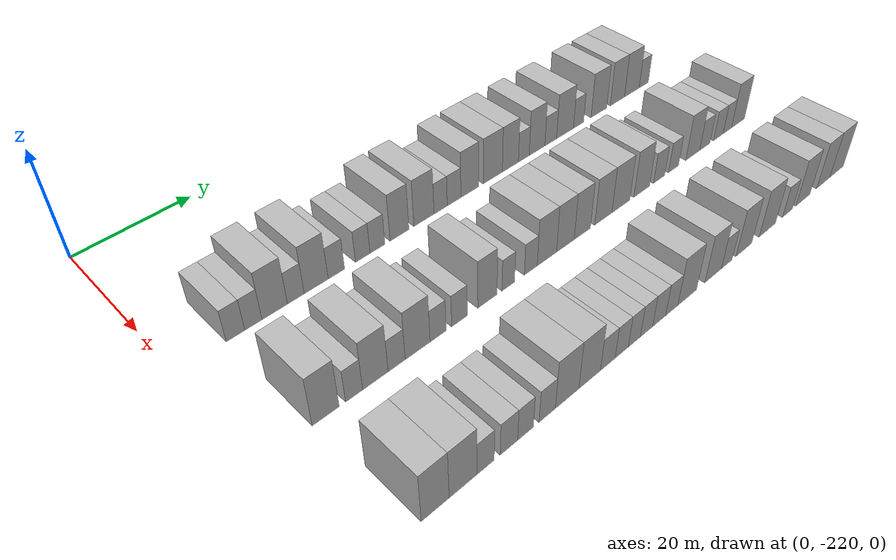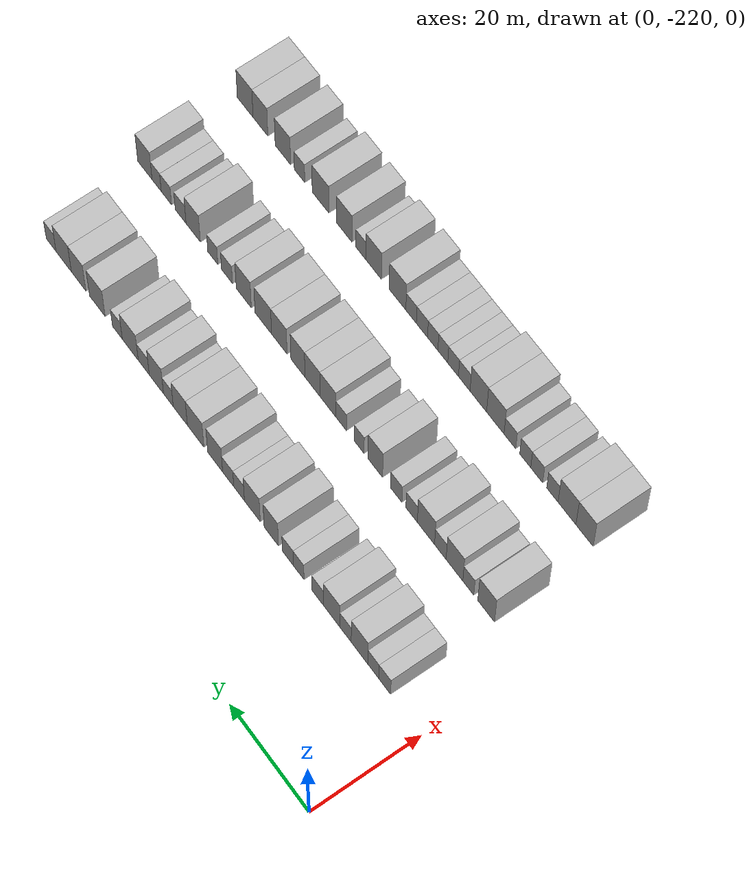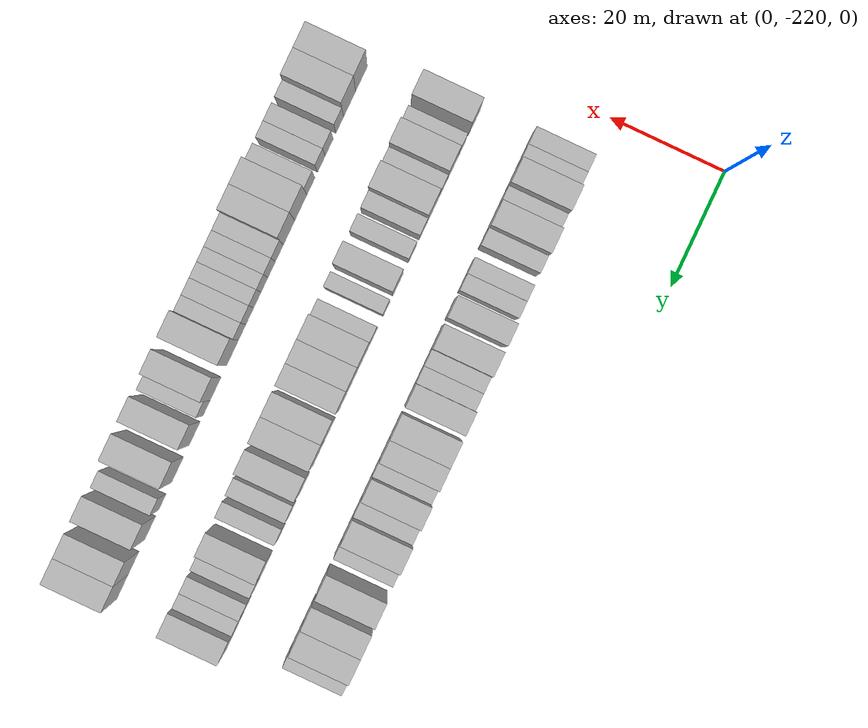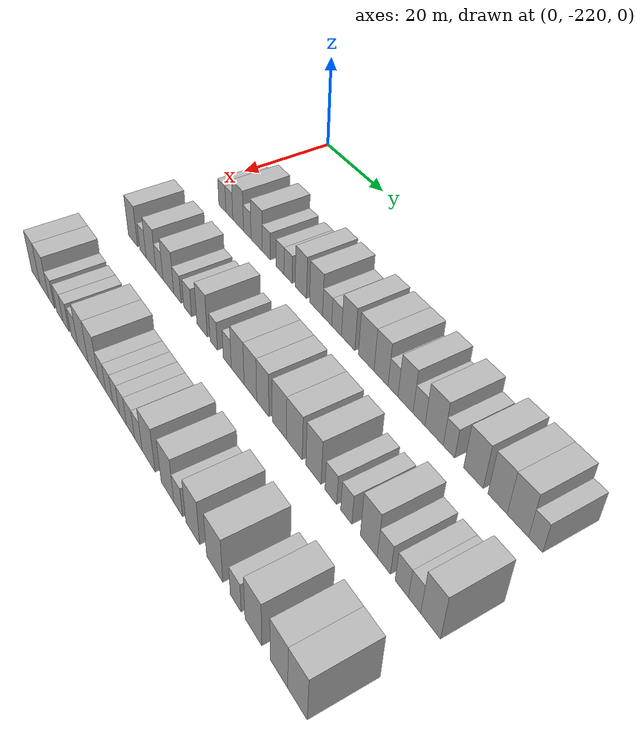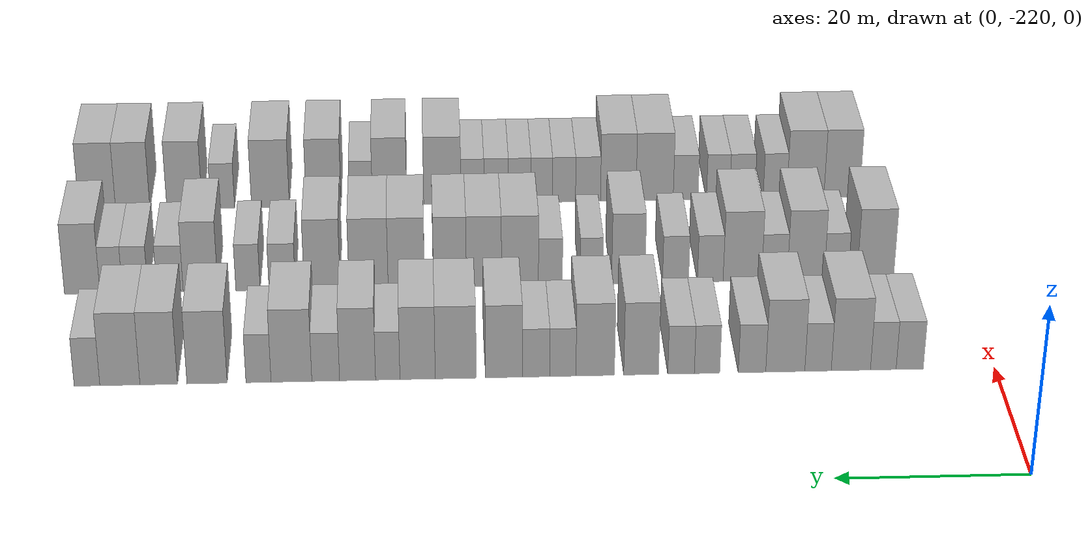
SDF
<sdf version="1.6">
 <world name="default">
  <model name="building_32">
   <static>1</static>
   <pose>25.0000 -210.8348 0 0.000000 0.000000 0.000000</pose>
   <link name="link">
    <pose>0 0 3.00 0 0 0</pose>
    <collision name="collision"><geometry><box><size>10.0000 2.9253 6.0000</size></box></geometry></collision>
    <visual name="visual">
     <cast_shadows>0</cast_shadows>
     <geometry><box><size>10.0000 2.9253 6.0000</size></box></geometry>
     <material>
      <script>
       <uri>model://HANNAS_wall/materials/scripts</uri>
       <uri>model://HANNAS_wall/materials/textures</uri>
       <name>vrc/HANNAS_wall</name>
      </script>
     </material>
    </visual>
   </link>
  </model>
  <model name="building_33">
   <static>1</static>
   <pose>25.0000 -207.9864 0 0.000000 0.000000 0.000000</pose>
   <link name="link">
    <pose>0 0 3.00 0 0 0</pose>
    <collision name="collision"><geometry><box><size>10.0000 2.7715 6.0000</size></box></geometry></collision>
    <visual name="visual">
     <cast_shadows>0</cast_shadows>
     <geometry><box><size>10.0000 2.7715 6.0000</size></box></geometry>
     <material>
      <script>
       <uri>model://HANNAS_wall/materials/scripts</uri>
       <uri>model://HANNAS_wall/materials/textures</uri>
       <name>vrc/HANNAS_wall</name>
      </script>
     </material>
    </visual>
   </link>
  </model>
  <model name="building_34">
   <static>1</static>
   <pose>25.0000 -204.4885 0 0.000000 0.000000 0.000000</pose>
   <link name="link">
    <pose>0 0 4.50 0 0 0</pose>
    <collision name="collision"><geometry><box><size>10.0000 4.2243 9.0000</size></box></geometry></collision>
    <visual name="visual">
     <cast_shadows>0</cast_shadows>
     <geometry><box><size>10.0000 4.2243 9.0000</size></box></geometry>
     <material>
      <script>
       <uri>model://HANNAS_wall/materials/scripts</uri>
       <uri>model://HANNAS_wall/materials/textures</uri>
       <name>vrc/HANNAS_wall</name>
      </script>
     </material>
    </visual>
   </link>
  </model>
  <model name="building_35">
   <static>1</static>
   <pose>25.0000 -200.9533 0 0.000000 0.000000 0.000000</pose>
   <link name="link">
    <pose>0 0 3.00 0 0 0</pose>
    <collision name="collision"><geometry><box><size>10.0000 2.8462 6.0000</size></box></geometry></collision>
    <visual name="visual">
     <cast_shadows>0</cast_shadows>
     <geometry><box><size>10.0000 2.8462 6.0000</size></box></geometry>
     <material>
      <script>
       <uri>model://HANNAS_wall/materials/scripts</uri>
       <uri>model://HANNAS_wall/materials/textures</uri>
       <name>vrc/HANNAS_wall</name>
      </script>
     </material>
    </visual>
   </link>
  </model>
  <model name="building_36">
   <static>1</static>
   <pose>25.0000 -197.4274 0 0.000000 0.000000 0.000000</pose>
   <link name="link">
    <pose>0 0 4.50 0 0 0</pose>
    <collision name="collision"><geometry><box><size>10.0000 4.2056 9.0000</size></box></geometry></collision>
    <visual name="visual">
     <cast_shadows>0</cast_shadows>
     <geometry><box><size>10.0000 4.2056 9.0000</size></box></geometry>
     <material>
      <script>
       <uri>model://HANNAS_wall/materials/scripts</uri>
       <uri>model://HANNAS_wall/materials/textures</uri>
       <name>vrc/HANNAS_wall</name>
      </script>
     </material>
    </visual>
   </link>
  </model>
  <model name="building_37">
   <static>1</static>
   <pose>25.0000 -193.8503 0 0.000000 0.000000 0.000000</pose>
   <link name="link">
    <pose>0 0 3.00 0 0 0</pose>
    <collision name="collision"><geometry><box><size>10.0000 2.9484 6.0000</size></box></geometry></collision>
    <visual name="visual">
     <cast_shadows>0</cast_shadows>
     <geometry><box><size>10.0000 2.9484 6.0000</size></box></geometry>
     <material>
      <script>
       <uri>model://HANNAS_wall/materials/scripts</uri>
       <uri>model://HANNAS_wall/materials/textures</uri>
       <name>vrc/HANNAS_wall</name>
      </script>
     </material>
    </visual>
   </link>
  </model>
  <model name="building_38">
   <static>1</static>
   <pose>25.0000 -189.0111 0 0.000000 0.000000 0.000000</pose>
   <link name="link">
    <pose>0 0 3.00 0 0 0</pose>
    <collision name="collision"><geometry><box><size>10.0000 2.7301 6.0000</size></box></geometry></collision>
    <visual name="visual">
     <cast_shadows>0</cast_shadows>
     <geometry><box><size>10.0000 2.7301 6.0000</size></box></geometry>
     <material>
      <script>
       <uri>model://HANNAS_wall/materials/scripts</uri>
       <uri>model://HANNAS_wall/materials/textures</uri>
       <name>vrc/HANNAS_wall</name>
      </script>
     </material>
    </visual>
   </link>
  </model>
  <model name="building_39">
   <static>1</static>
   <pose>25.0000 -186.2230 0 0.000000 0.000000 0.000000</pose>
   <link name="link">
    <pose>0 0 3.00 0 0 0</pose>
    <collision name="collision"><geometry><box><size>10.0000 2.8460 6.0000</size></box></geometry></collision>
    <visual name="visual">
     <cast_shadows>0</cast_shadows>
     <geometry><box><size>10.0000 2.8460 6.0000</size></box></geometry>
     <material>
      <script>
       <uri>model://HANNAS_wall/materials/scripts</uri>
       <uri>model://HANNAS_wall/materials/textures</uri>
       <name>vrc/HANNAS_wall</name>
      </script>
     </material>
    </visual>
   </link>
  </model>
  <model name="building_40">
   <static>1</static>
   <pose>25.0000 -181.9369 0 0.000000 0.000000 0.000000</pose>
   <link name="link">
    <pose>0 0 4.50 0 0 0</pose>
    <collision name="collision"><geometry><box><size>10.0000 3.7263 9.0000</size></box></geometry></collision>
    <visual name="visual">
     <cast_shadows>0</cast_shadows>
     <geometry><box><size>10.0000 3.7263 9.0000</size></box></geometry>
     <material>
      <script>
       <uri>model://HANNAS_wall/materials/scripts</uri>
       <uri>model://HANNAS_wall/materials/textures</uri>
       <name>vrc/HANNAS_wall</name>
      </script>
     </material>
    </visual>
   </link>
  </model>
  <model name="building_41">
   <static>1</static>
   <pose>25.0000 -177.0103 0 0.000000 0.000000 0.000000</pose>
   <link name="link">
    <pose>0 0 4.50 0 0 0</pose>
    <collision name="collision"><geometry><box><size>10.0000 4.1269 9.0000</size></box></geometry></collision>
    <visual name="visual">
     <cast_shadows>0</cast_shadows>
     <geometry><box><size>10.0000 4.1269 9.0000</size></box></geometry>
     <material>
      <script>
       <uri>model://HANNAS_wall/materials/scripts</uri>
       <uri>model://HANNAS_wall/materials/textures</uri>
       <name>vrc/HANNAS_wall</name>
      </script>
     </material>
    </visual>
   </link>
  </model>
  <model name="building_42">
   <static>1</static>
   <pose>25.0000 -173.5487 0 0.000000 0.000000 0.000000</pose>
   <link name="link">
    <pose>0 0 3.00 0 0 0</pose>
    <collision name="collision"><geometry><box><size>10.0000 2.7963 6.0000</size></box></geometry></collision>
    <visual name="visual">
     <cast_shadows>0</cast_shadows>
     <geometry><box><size>10.0000 2.7963 6.0000</size></box></geometry>
     <material>
      <script>
       <uri>model://HANNAS_wall/materials/scripts</uri>
       <uri>model://HANNAS_wall/materials/textures</uri>
       <name>vrc/HANNAS_wall</name>
      </script>
     </material>
    </visual>
   </link>
  </model>
  <model name="building_43">
   <static>1</static>
   <pose>25.0000 -170.6842 0 0.000000 0.000000 0.000000</pose>
   <link name="link">
    <pose>0 0 3.00 0 0 0</pose>
    <collision name="collision"><geometry><box><size>10.0000 2.9326 6.0000</size></box></geometry></collision>
    <visual name="visual">
     <cast_shadows>0</cast_shadows>
     <geometry><box><size>10.0000 2.9326 6.0000</size></box></geometry>
     <material>
      <script>
       <uri>model://HANNAS_wall/materials/scripts</uri>
       <uri>model://HANNAS_wall/materials/textures</uri>
       <name>vrc/HANNAS_wall</name>
      </script>
     </material>
    </visual>
   </link>
  </model>
  <model name="building_44">
   <static>1</static>
   <pose>25.0000 -167.2546 0 0.000000 0.000000 0.000000</pose>
   <link name="link">
    <pose>0 0 4.50 0 0 0</pose>
    <collision name="collision"><geometry><box><size>10.0000 3.9267 9.0000</size></box></geometry></collision>
    <visual name="visual">
     <cast_shadows>0</cast_shadows>
     <geometry><box><size>10.0000 3.9267 9.0000</size></box></geometry>
     <material>
      <script>
       <uri>model://HANNAS_wall/materials/scripts</uri>
       <uri>model://HANNAS_wall/materials/textures</uri>
       <name>vrc/HANNAS_wall</name>
      </script>
     </material>
    </visual>
   </link>
  </model>
  <model name="building_45">
   <static>1</static>
   <pose>25.0000 -162.1022 0 0.000000 0.000000 0.000000</pose>
   <link name="link">
    <pose>0 0 4.50 0 0 0</pose>
    <collision name="collision"><geometry><box><size>10.0000 4.3781 9.0000</size></box></geometry></collision>
    <visual name="visual">
     <cast_shadows>0</cast_shadows>
     <geometry><box><size>10.0000 4.3781 9.0000</size></box></geometry>
     <material>
      <script>
       <uri>model://HANNAS_wall/materials/scripts</uri>
       <uri>model://HANNAS_wall/materials/textures</uri>
       <name>vrc/HANNAS_wall</name>
      </script>
     </material>
    </visual>
   </link>
  </model>
  <model name="building_46">
   <static>1</static>
   <pose>25.0000 -158.0281 0 0.000000 0.000000 0.000000</pose>
   <link name="link">
    <pose>0 0 4.50 0 0 0</pose>
    <collision name="collision"><geometry><box><size>10.0000 3.7700 9.0000</size></box></geometry></collision>
    <visual name="visual">
     <cast_shadows>0</cast_shadows>
     <geometry><box><size>10.0000 3.7700 9.0000</size></box></geometry>
     <material>
      <script>
       <uri>model://HANNAS_wall/materials/scripts</uri>
       <uri>model://HANNAS_wall/materials/textures</uri>
       <name>vrc/HANNAS_wall</name>
      </script>
     </material>
    </visual>
   </link>
  </model>
  <model name="building_47">
   <static>1</static>
   <pose>25.0000 -154.8432 0 0.000000 0.000000 0.000000</pose>
   <link name="link">
    <pose>0 0 3.00 0 0 0</pose>
    <collision name="collision"><geometry><box><size>10.0000 2.5999 6.0000</size></box></geometry></collision>
    <visual name="visual">
     <cast_shadows>0</cast_shadows>
     <geometry><box><size>10.0000 2.5999 6.0000</size></box></geometry>
     <material>
      <script>
       <uri>model://HANNAS_wall/materials/scripts</uri>
       <uri>model://HANNAS_wall/materials/textures</uri>
       <name>vrc/HANNAS_wall</name>
      </script>
     </material>
    </visual>
   </link>
  </model>
  <model name="building_48">
   <static>1</static>
   <pose>25.0000 -151.6266 0 0.000000 0.000000 0.000000</pose>
   <link name="link">
    <pose>0 0 4.50 0 0 0</pose>
    <collision name="collision"><geometry><box><size>10.0000 3.8334 9.0000</size></box></geometry></collision>
    <visual name="visual">
     <cast_shadows>0</cast_shadows>
     <geometry><box><size>10.0000 3.8334 9.0000</size></box></geometry>
     <material>
      <script>
       <uri>model://HANNAS_wall/materials/scripts</uri>
       <uri>model://HANNAS_wall/materials/textures</uri>
       <name>vrc/HANNAS_wall</name>
      </script>
     </material>
    </visual>
   </link>
  </model>
  <model name="building_49">
   <static>1</static>
   <pose>25.0000 -148.2320 0 0.000000 0.000000 0.000000</pose>
   <link name="link">
    <pose>0 0 3.00 0 0 0</pose>
    <collision name="collision"><geometry><box><size>10.0000 2.9559 6.0000</size></box></geometry></collision>
    <visual name="visual">
     <cast_shadows>0</cast_shadows>
     <geometry><box><size>10.0000 2.9559 6.0000</size></box></geometry>
     <material>
      <script>
       <uri>model://HANNAS_wall/materials/scripts</uri>
       <uri>model://HANNAS_wall/materials/textures</uri>
       <name>vrc/HANNAS_wall</name>
      </script>
     </material>
    </visual>
   </link>
  </model>
  <model name="building_50">
   <static>1</static>
   <pose>25.0000 -144.5855 0 0.000000 0.000000 0.000000</pose>
   <link name="link">
    <pose>0 0 4.50 0 0 0</pose>
    <collision name="collision"><geometry><box><size>10.0000 4.3371 9.0000</size></box></geometry></collision>
    <visual name="visual">
     <cast_shadows>0</cast_shadows>
     <geometry><box><size>10.0000 4.3371 9.0000</size></box></geometry>
     <material>
      <script>
       <uri>model://HANNAS_wall/materials/scripts</uri>
       <uri>model://HANNAS_wall/materials/textures</uri>
       <name>vrc/HANNAS_wall</name>
      </script>
     </material>
    </visual>
   </link>
  </model>
  <model name="building_51">
   <static>1</static>
   <pose>25.0000 -141.0825 0 0.000000 0.000000 0.000000</pose>
   <link name="link">
    <pose>0 0 3.00 0 0 0</pose>
    <collision name="collision"><geometry><box><size>10.0000 2.6689 6.0000</size></box></geometry></collision>
    <visual name="visual">
     <cast_shadows>0</cast_shadows>
     <geometry><box><size>10.0000 2.6689 6.0000</size></box></geometry>
     <material>
      <script>
       <uri>model://HANNAS_wall/materials/scripts</uri>
       <uri>model://HANNAS_wall/materials/textures</uri>
       <name>vrc/HANNAS_wall</name>
      </script>
     </material>
    </visual>
   </link>
  </model>
  <model name="building_52">
   <static>1</static>
   <pose>25.0000 -135.6141 0 0.000000 0.000000 0.000000</pose>
   <link name="link">
    <pose>0 0 4.50 0 0 0</pose>
    <collision name="collision"><geometry><box><size>10.0000 4.2678 9.0000</size></box></geometry></collision>
    <visual name="visual">
     <cast_shadows>0</cast_shadows>
     <geometry><box><size>10.0000 4.2678 9.0000</size></box></geometry>
     <material>
      <script>
       <uri>model://HANNAS_wall/materials/scripts</uri>
       <uri>model://HANNAS_wall/materials/textures</uri>
       <name>vrc/HANNAS_wall</name>
      </script>
     </material>
    </visual>
   </link>
  </model>
  <model name="building_53">
   <static>1</static>
   <pose>25.0000 -130.4871 0 0.000000 0.000000 0.000000</pose>
   <link name="link">
    <pose>0 0 4.50 0 0 0</pose>
    <collision name="collision"><geometry><box><size>10.0000 3.9863 9.0000</size></box></geometry></collision>
    <visual name="visual">
     <cast_shadows>0</cast_shadows>
     <geometry><box><size>10.0000 3.9863 9.0000</size></box></geometry>
     <material>
      <script>
       <uri>model://HANNAS_wall/materials/scripts</uri>
       <uri>model://HANNAS_wall/materials/textures</uri>
       <name>vrc/HANNAS_wall</name>
      </script>
     </material>
    </visual>
   </link>
  </model>
  <model name="building_54">
   <static>1</static>
   <pose>25.0000 -126.3685 0 0.000000 0.000000 0.000000</pose>
   <link name="link">
    <pose>0 0 4.50 0 0 0</pose>
    <collision name="collision"><geometry><box><size>10.0000 4.2508 9.0000</size></box></geometry></collision>
    <visual name="visual">
     <cast_shadows>0</cast_shadows>
     <geometry><box><size>10.0000 4.2508 9.0000</size></box></geometry>
     <material>
      <script>
       <uri>model://HANNAS_wall/materials/scripts</uri>
       <uri>model://HANNAS_wall/materials/textures</uri>
       <name>vrc/HANNAS_wall</name>
      </script>
     </material>
    </visual>
   </link>
  </model>
  <model name="building_55">
   <static>1</static>
   <pose>25.0000 -122.8833 0 0.000000 0.000000 0.000000</pose>
   <link name="link">
    <pose>0 0 3.00 0 0 0</pose>
    <collision name="collision"><geometry><box><size>10.0000 2.7194 6.0000</size></box></geometry></collision>
    <visual name="visual">
     <cast_shadows>0</cast_shadows>
     <geometry><box><size>10.0000 2.7194 6.0000</size></box></geometry>
     <material>
      <script>
       <uri>model://HANNAS_wall/materials/scripts</uri>
       <uri>model://HANNAS_wall/materials/textures</uri>
       <name>vrc/HANNAS_wall</name>
      </script>
     </material>
    </visual>
   </link>
  </model>
  <model name="building_214">
   <static>1</static>
   <pose>44.0000 -209.9576 0 0.000000 0.000000 0.000000</pose>
   <link name="link">
    <pose>0 0 4.50 0 0 0</pose>
    <collision name="collision"><geometry><box><size>10.0000 4.1595 9.0000</size></box></geometry></collision>
    <visual name="visual">
     <cast_shadows>0</cast_shadows>
     <geometry><box><size>10.0000 4.1595 9.0000</size></box></geometry>
     <material>
      <script>
       <uri>model://HANNAS_wall/materials/scripts</uri>
       <uri>model://HANNAS_wall/materials/textures</uri>
       <name>vrc/HANNAS_wall</name>
      </script>
     </material>
    </visual>
   </link>
  </model>
  <model name="building_215">
   <static>1</static>
   <pose>44.0000 -205.5115 0 0.000000 0.000000 0.000000</pose>
   <link name="link">
    <pose>0 0 3.00 0 0 0</pose>
    <collision name="collision"><geometry><box><size>10.0000 2.7327 6.0000</size></box></geometry></collision>
    <visual name="visual">
     <cast_shadows>0</cast_shadows>
     <geometry><box><size>10.0000 2.7327 6.0000</size></box></geometry>
     <material>
      <script>
       <uri>model://HANNAS_wall/materials/scripts</uri>
       <uri>model://HANNAS_wall/materials/textures</uri>
       <name>vrc/HANNAS_wall</name>
      </script>
     </material>
    </visual>
   </link>
  </model>
  <model name="building_216">
   <static>1</static>
   <pose>44.0000 -202.0435 0 0.000000 0.000000 0.000000</pose>
   <link name="link">
    <pose>0 0 4.50 0 0 0</pose>
    <collision name="collision"><geometry><box><size>10.0000 4.2032 9.0000</size></box></geometry></collision>
    <visual name="visual">
     <cast_shadows>0</cast_shadows>
     <geometry><box><size>10.0000 4.2032 9.0000</size></box></geometry>
     <material>
      <script>
       <uri>model://HANNAS_wall/materials/scripts</uri>
       <uri>model://HANNAS_wall/materials/textures</uri>
       <name>vrc/HANNAS_wall</name>
      </script>
     </material>
    </visual>
   </link>
  </model>
  <model name="building_217">
   <static>1</static>
   <pose>44.0000 -198.4869 0 0.000000 0.000000 0.000000</pose>
   <link name="link">
    <pose>0 0 3.00 0 0 0</pose>
    <collision name="collision"><geometry><box><size>10.0000 2.9101 6.0000</size></box></geometry></collision>
    <visual name="visual">
     <cast_shadows>0</cast_shadows>
     <geometry><box><size>10.0000 2.9101 6.0000</size></box></geometry>
     <material>
      <script>
       <uri>model://HANNAS_wall/materials/scripts</uri>
       <uri>model://HANNAS_wall/materials/textures</uri>
       <name>vrc/HANNAS_wall</name>
      </script>
     </material>
    </visual>
   </link>
  </model>
  <model name="building_218">
   <static>1</static>
   <pose>44.0000 -194.8480 0 0.000000 0.000000 0.000000</pose>
   <link name="link">
    <pose>0 0 4.50 0 0 0</pose>
    <collision name="collision"><geometry><box><size>10.0000 4.3676 9.0000</size></box></geometry></collision>
    <visual name="visual">
     <cast_shadows>0</cast_shadows>
     <geometry><box><size>10.0000 4.3676 9.0000</size></box></geometry>
     <material>
      <script>
       <uri>model://HANNAS_wall/materials/scripts</uri>
       <uri>model://HANNAS_wall/materials/textures</uri>
       <name>vrc/HANNAS_wall</name>
      </script>
     </material>
    </visual>
   </link>
  </model>
  <model name="building_219">
   <static>1</static>
   <pose>44.0000 -191.2102 0 0.000000 0.000000 0.000000</pose>
   <link name="link">
    <pose>0 0 3.00 0 0 0</pose>
    <collision name="collision"><geometry><box><size>10.0000 2.9081 6.0000</size></box></geometry></collision>
    <visual name="visual">
     <cast_shadows>0</cast_shadows>
     <geometry><box><size>10.0000 2.9081 6.0000</size></box></geometry>
     <material>
      <script>
       <uri>model://HANNAS_wall/materials/scripts</uri>
       <uri>model://HANNAS_wall/materials/textures</uri>
       <name>vrc/HANNAS_wall</name>
      </script>
     </material>
    </visual>
   </link>
  </model>
  <model name="building_220">
   <static>1</static>
   <pose>44.0000 -187.2780 0 0.000000 0.000000 0.000000</pose>
   <link name="link">
    <pose>0 0 3.00 0 0 0</pose>
    <collision name="collision"><geometry><box><size>10.0000 2.9564 6.0000</size></box></geometry></collision>
    <visual name="visual">
     <cast_shadows>0</cast_shadows>
     <geometry><box><size>10.0000 2.9564 6.0000</size></box></geometry>
     <material>
      <script>
       <uri>model://HANNAS_wall/materials/scripts</uri>
       <uri>model://HANNAS_wall/materials/textures</uri>
       <name>vrc/HANNAS_wall</name>
      </script>
     </material>
    </visual>
   </link>
  </model>
  <model name="building_221">
   <static>1</static>
   <pose>44.0000 -181.9205 0 0.000000 0.000000 0.000000</pose>
   <link name="link">
    <pose>0 0 4.50 0 0 0</pose>
    <collision name="collision"><geometry><box><size>10.0000 3.7586 9.0000</size></box></geometry></collision>
    <visual name="visual">
     <cast_shadows>0</cast_shadows>
     <geometry><box><size>10.0000 3.7586 9.0000</size></box></geometry>
     <material>
      <script>
       <uri>model://HANNAS_wall/materials/scripts</uri>
       <uri>model://HANNAS_wall/materials/textures</uri>
       <name>vrc/HANNAS_wall</name>
      </script>
     </material>
    </visual>
   </link>
  </model>
  <model name="building_222">
   <static>1</static>
   <pose>44.0000 -177.7584 0 0.000000 0.000000 0.000000</pose>
   <link name="link">
    <pose>0 0 3.00 0 0 0</pose>
    <collision name="collision"><geometry><box><size>10.0000 2.5655 6.0000</size></box></geometry></collision>
    <visual name="visual">
     <cast_shadows>0</cast_shadows>
     <geometry><box><size>10.0000 2.5655 6.0000</size></box></geometry>
     <material>
      <script>
       <uri>model://HANNAS_wall/materials/scripts</uri>
       <uri>model://HANNAS_wall/materials/textures</uri>
       <name>vrc/HANNAS_wall</name>
      </script>
     </material>
    </visual>
   </link>
  </model>
  <model name="building_223">
   <static>1</static>
   <pose>44.0000 -173.1225 0 0.000000 0.000000 0.000000</pose>
   <link name="link">
    <pose>0 0 3.00 0 0 0</pose>
    <collision name="collision"><geometry><box><size>10.0000 2.7062 6.0000</size></box></geometry></collision>
    <visual name="visual">
     <cast_shadows>0</cast_shadows>
     <geometry><box><size>10.0000 2.7062 6.0000</size></box></geometry>
     <material>
      <script>
       <uri>model://HANNAS_wall/materials/scripts</uri>
       <uri>model://HANNAS_wall/materials/textures</uri>
       <name>vrc/HANNAS_wall</name>
      </script>
     </material>
    </visual>
   </link>
  </model>
  <model name="building_224">
   <static>1</static>
   <pose>44.0000 -169.6858 0 0.000000 0.000000 0.000000</pose>
   <link name="link">
    <pose>0 0 4.50 0 0 0</pose>
    <collision name="collision"><geometry><box><size>10.0000 4.1672 9.0000</size></box></geometry></collision>
    <visual name="visual">
     <cast_shadows>0</cast_shadows>
     <geometry><box><size>10.0000 4.1672 9.0000</size></box></geometry>
     <material>
      <script>
       <uri>model://HANNAS_wall/materials/scripts</uri>
       <uri>model://HANNAS_wall/materials/textures</uri>
       <name>vrc/HANNAS_wall</name>
      </script>
     </material>
    </visual>
   </link>
  </model>
  <model name="building_225">
   <static>1</static>
   <pose>44.0000 -165.6264 0 0.000000 0.000000 0.000000</pose>
   <link name="link">
    <pose>0 0 4.50 0 0 0</pose>
    <collision name="collision"><geometry><box><size>10.0000 3.9516 9.0000</size></box></geometry></collision>
    <visual name="visual">
     <cast_shadows>0</cast_shadows>
     <geometry><box><size>10.0000 3.9516 9.0000</size></box></geometry>
     <material>
      <script>
       <uri>model://HANNAS_wall/materials/scripts</uri>
       <uri>model://HANNAS_wall/materials/textures</uri>
       <name>vrc/HANNAS_wall</name>
      </script>
     </material>
    </visual>
   </link>
  </model>
  <model name="building_226">
   <static>1</static>
   <pose>44.0000 -161.7976 0 0.000000 0.000000 0.000000</pose>
   <link name="link">
    <pose>0 0 4.50 0 0 0</pose>
    <collision name="collision"><geometry><box><size>10.0000 3.7060 9.0000</size></box></geometry></collision>
    <visual name="visual">
     <cast_shadows>0</cast_shadows>
     <geometry><box><size>10.0000 3.7060 9.0000</size></box></geometry>
     <material>
      <script>
       <uri>model://HANNAS_wall/materials/scripts</uri>
       <uri>model://HANNAS_wall/materials/textures</uri>
       <name>vrc/HANNAS_wall</name>
      </script>
     </material>
    </visual>
   </link>
  </model>
  <model name="building_227">
   <static>1</static>
   <pose>44.0000 -156.8939 0 0.000000 0.000000 0.000000</pose>
   <link name="link">
    <pose>0 0 4.50 0 0 0</pose>
    <collision name="collision"><geometry><box><size>10.0000 4.1015 9.0000</size></box></geometry></collision>
    <visual name="visual">
     <cast_shadows>0</cast_shadows>
     <geometry><box><size>10.0000 4.1015 9.0000</size></box></geometry>
     <material>
      <script>
       <uri>model://HANNAS_wall/materials/scripts</uri>
       <uri>model://HANNAS_wall/materials/textures</uri>
       <name>vrc/HANNAS_wall</name>
      </script>
     </material>
    </visual>
   </link>
  </model>
  <model name="building_228">
   <static>1</static>
   <pose>44.0000 -152.6460 0 0.000000 0.000000 0.000000</pose>
   <link name="link">
    <pose>0 0 4.50 0 0 0</pose>
    <collision name="collision"><geometry><box><size>10.0000 4.3942 9.0000</size></box></geometry></collision>
    <visual name="visual">
     <cast_shadows>0</cast_shadows>
     <geometry><box><size>10.0000 4.3942 9.0000</size></box></geometry>
     <material>
      <script>
       <uri>model://HANNAS_wall/materials/scripts</uri>
       <uri>model://HANNAS_wall/materials/textures</uri>
       <name>vrc/HANNAS_wall</name>
      </script>
     </material>
    </visual>
   </link>
  </model>
  <model name="building_229">
   <static>1</static>
   <pose>44.0000 -147.4326 0 0.000000 0.000000 0.000000</pose>
   <link name="link">
    <pose>0 0 4.50 0 0 0</pose>
    <collision name="collision"><geometry><box><size>10.0000 4.0327 9.0000</size></box></geometry></collision>
    <visual name="visual">
     <cast_shadows>0</cast_shadows>
     <geometry><box><size>10.0000 4.0327 9.0000</size></box></geometry>
     <material>
      <script>
       <uri>model://HANNAS_wall/materials/scripts</uri>
       <uri>model://HANNAS_wall/materials/textures</uri>
       <name>vrc/HANNAS_wall</name>
      </script>
     </material>
    </visual>
   </link>
  </model>
  <model name="building_230">
   <static>1</static>
   <pose>44.0000 -142.9363 0 0.000000 0.000000 0.000000</pose>
   <link name="link">
    <pose>0 0 3.00 0 0 0</pose>
    <collision name="collision"><geometry><box><size>10.0000 2.9598 6.0000</size></box></geometry></collision>
    <visual name="visual">
     <cast_shadows>0</cast_shadows>
     <geometry><box><size>10.0000 2.9598 6.0000</size></box></geometry>
     <material>
      <script>
       <uri>model://HANNAS_wall/materials/scripts</uri>
       <uri>model://HANNAS_wall/materials/textures</uri>
       <name>vrc/HANNAS_wall</name>
      </script>
     </material>
    </visual>
   </link>
  </model>
  <model name="building_231">
   <static>1</static>
   <pose>44.0000 -139.0976 0 0.000000 0.000000 0.000000</pose>
   <link name="link">
    <pose>0 0 3.00 0 0 0</pose>
    <collision name="collision"><geometry><box><size>10.0000 2.7177 6.0000</size></box></geometry></collision>
    <visual name="visual">
     <cast_shadows>0</cast_shadows>
     <geometry><box><size>10.0000 2.7177 6.0000</size></box></geometry>
     <material>
      <script>
       <uri>model://HANNAS_wall/materials/scripts</uri>
       <uri>model://HANNAS_wall/materials/textures</uri>
       <name>vrc/HANNAS_wall</name>
      </script>
     </material>
    </visual>
   </link>
  </model>
  <model name="building_232">
   <static>1</static>
   <pose>44.0000 -133.7875 0 0.000000 0.000000 0.000000</pose>
   <link name="link">
    <pose>0 0 4.50 0 0 0</pose>
    <collision name="collision"><geometry><box><size>10.0000 3.9026 9.0000</size></box></geometry></collision>
    <visual name="visual">
     <cast_shadows>0</cast_shadows>
     <geometry><box><size>10.0000 3.9026 9.0000</size></box></geometry>
     <material>
      <script>
       <uri>model://HANNAS_wall/materials/scripts</uri>
       <uri>model://HANNAS_wall/materials/textures</uri>
       <name>vrc/HANNAS_wall</name>
      </script>
     </material>
    </visual>
   </link>
  </model>
  <model name="building_233">
   <static>1</static>
   <pose>44.0000 -130.3579 0 0.000000 0.000000 0.000000</pose>
   <link name="link">
    <pose>0 0 3.00 0 0 0</pose>
    <collision name="collision"><geometry><box><size>10.0000 2.9566 6.0000</size></box></geometry></collision>
    <visual name="visual">
     <cast_shadows>0</cast_shadows>
     <geometry><box><size>10.0000 2.9566 6.0000</size></box></geometry>
     <material>
      <script>
       <uri>model://HANNAS_wall/materials/scripts</uri>
       <uri>model://HANNAS_wall/materials/textures</uri>
       <name>vrc/HANNAS_wall</name>
      </script>
     </material>
    </visual>
   </link>
  </model>
  <model name="building_234">
   <static>1</static>
   <pose>44.0000 -126.4583 0 0.000000 0.000000 0.000000</pose>
   <link name="link">
    <pose>0 0 3.00 0 0 0</pose>
    <collision name="collision"><geometry><box><size>10.0000 2.8428 6.0000</size></box></geometry></collision>
    <visual name="visual">
     <cast_shadows>0</cast_shadows>
     <geometry><box><size>10.0000 2.8428 6.0000</size></box></geometry>
     <material>
      <script>
       <uri>model://HANNAS_wall/materials/scripts</uri>
       <uri>model://HANNAS_wall/materials/textures</uri>
       <name>vrc/HANNAS_wall</name>
      </script>
     </material>
    </visual>
   </link>
  </model>
  <model name="building_235">
   <static>1</static>
   <pose>44.0000 -123.7779 0 0.000000 0.000000 0.000000</pose>
   <link name="link">
    <pose>0 0 3.00 0 0 0</pose>
    <collision name="collision"><geometry><box><size>10.0000 2.5179 6.0000</size></box></geometry></collision>
    <visual name="visual">
     <cast_shadows>0</cast_shadows>
     <geometry><box><size>10.0000 2.5179 6.0000</size></box></geometry>
     <material>
      <script>
       <uri>model://HANNAS_wall/materials/scripts</uri>
       <uri>model://HANNAS_wall/materials/textures</uri>
       <name>vrc/HANNAS_wall</name>
      </script>
     </material>
    </visual>
   </link>
  </model>
  <model name="building_236">
   <static>1</static>
   <pose>44.0000 -120.5390 0 0.000000 0.000000 0.000000</pose>
   <link name="link">
    <pose>0 0 4.50 0 0 0</pose>
    <collision name="collision"><geometry><box><size>10.0000 3.9599 9.0000</size></box></geometry></collision>
    <visual name="visual">
     <cast_shadows>0</cast_shadows>
     <geometry><box><size>10.0000 3.9599 9.0000</size></box></geometry>
     <material>
      <script>
       <uri>model://HANNAS_wall/materials/scripts</uri>
       <uri>model://HANNAS_wall/materials/textures</uri>
       <name>vrc/HANNAS_wall</name>
      </script>
     </material>
    </visual>
   </link>
  </model>
  <model name="building_389">
   <static>1</static>
   <pose>63.0000 -208.7802 0 0.000000 0.000000 0.000000</pose>
   <link name="link">
    <pose>0 0 4.50 0 0 0</pose>
    <collision name="collision"><geometry><box><size>10.0000 4.2761 9.0000</size></box></geometry></collision>
    <visual name="visual">
     <cast_shadows>0</cast_shadows>
     <geometry><box><size>10.0000 4.2761 9.0000</size></box></geometry>
     <material>
      <script>
       <uri>model://HANNAS_wall/materials/scripts</uri>
       <uri>model://HANNAS_wall/materials/textures</uri>
       <name>vrc/HANNAS_wall</name>
      </script>
     </material>
    </visual>
   </link>
  </model>
  <model name="building_390">
   <static>1</static>
   <pose>63.0000 -204.4242 0 0.000000 0.000000 0.000000</pose>
   <link name="link">
    <pose>0 0 4.50 0 0 0</pose>
    <collision name="collision"><geometry><box><size>10.0000 4.4360 9.0000</size></box></geometry></collision>
    <visual name="visual">
     <cast_shadows>0</cast_shadows>
     <geometry><box><size>10.0000 4.4360 9.0000</size></box></geometry>
     <material>
      <script>
       <uri>model://HANNAS_wall/materials/scripts</uri>
       <uri>model://HANNAS_wall/materials/textures</uri>
       <name>vrc/HANNAS_wall</name>
      </script>
     </material>
    </visual>
   </link>
  </model>
  <model name="building_391">
   <static>1</static>
   <pose>63.0000 -200.7921 0 0.000000 0.000000 0.000000</pose>
   <link name="link">
    <pose>0 0 3.00 0 0 0</pose>
    <collision name="collision"><geometry><box><size>10.0000 2.8282 6.0000</size></box></geometry></collision>
    <visual name="visual">
     <cast_shadows>0</cast_shadows>
     <geometry><box><size>10.0000 2.8282 6.0000</size></box></geometry>
     <material>
      <script>
       <uri>model://HANNAS_wall/materials/scripts</uri>
       <uri>model://HANNAS_wall/materials/textures</uri>
       <name>vrc/HANNAS_wall</name>
      </script>
     </material>
    </visual>
   </link>
  </model>
  <model name="building_392">
   <static>1</static>
   <pose>63.0000 -196.8790 0 0.000000 0.000000 0.000000</pose>
   <link name="link">
    <pose>0 0 3.00 0 0 0</pose>
    <collision name="collision"><geometry><box><size>10.0000 2.9980 6.0000</size></box></geometry></collision>
    <visual name="visual">
     <cast_shadows>0</cast_shadows>
     <geometry><box><size>10.0000 2.9980 6.0000</size></box></geometry>
     <material>
      <script>
       <uri>model://HANNAS_wall/materials/scripts</uri>
       <uri>model://HANNAS_wall/materials/textures</uri>
       <name>vrc/HANNAS_wall</name>
      </script>
     </material>
    </visual>
   </link>
  </model>
  <model name="building_393">
   <static>1</static>
   <pose>63.0000 -193.9946 0 0.000000 0.000000 0.000000</pose>
   <link name="link">
    <pose>0 0 3.00 0 0 0</pose>
    <collision name="collision"><geometry><box><size>10.0000 2.7707 6.0000</size></box></geometry></collision>
    <visual name="visual">
     <cast_shadows>0</cast_shadows>
     <geometry><box><size>10.0000 2.7707 6.0000</size></box></geometry>
     <material>
      <script>
       <uri>model://HANNAS_wall/materials/scripts</uri>
       <uri>model://HANNAS_wall/materials/textures</uri>
       <name>vrc/HANNAS_wall</name>
      </script>
     </material>
    </visual>
   </link>
  </model>
  <model name="building_394">
   <static>1</static>
   <pose>63.0000 -190.1261 0 0.000000 0.000000 0.000000</pose>
   <link name="link">
    <pose>0 0 3.00 0 0 0</pose>
    <collision name="collision"><geometry><box><size>10.0000 2.9664 6.0000</size></box></geometry></collision>
    <visual name="visual">
     <cast_shadows>0</cast_shadows>
     <geometry><box><size>10.0000 2.9664 6.0000</size></box></geometry>
     <material>
      <script>
       <uri>model://HANNAS_wall/materials/scripts</uri>
       <uri>model://HANNAS_wall/materials/textures</uri>
       <name>vrc/HANNAS_wall</name>
      </script>
     </material>
    </visual>
   </link>
  </model>
  <model name="building_395">
   <static>1</static>
   <pose>63.0000 -186.4249 0 0.000000 0.000000 0.000000</pose>
   <link name="link">
    <pose>0 0 4.50 0 0 0</pose>
    <collision name="collision"><geometry><box><size>10.0000 4.4359 9.0000</size></box></geometry></collision>
    <visual name="visual">
     <cast_shadows>0</cast_shadows>
     <geometry><box><size>10.0000 4.4359 9.0000</size></box></geometry>
     <material>
      <script>
       <uri>model://HANNAS_wall/materials/scripts</uri>
       <uri>model://HANNAS_wall/materials/textures</uri>
       <name>vrc/HANNAS_wall</name>
      </script>
     </material>
    </visual>
   </link>
  </model>
  <model name="building_396">
   <static>1</static>
   <pose>63.0000 -182.0969 0 0.000000 0.000000 0.000000</pose>
   <link name="link">
    <pose>0 0 4.50 0 0 0</pose>
    <collision name="collision"><geometry><box><size>10.0000 4.2201 9.0000</size></box></geometry></collision>
    <visual name="visual">
     <cast_shadows>0</cast_shadows>
     <geometry><box><size>10.0000 4.2201 9.0000</size></box></geometry>
     <material>
      <script>
       <uri>model://HANNAS_wall/materials/scripts</uri>
       <uri>model://HANNAS_wall/materials/textures</uri>
       <name>vrc/HANNAS_wall</name>
      </script>
     </material>
    </visual>
   </link>
  </model>
  <model name="building_397">
   <static>1</static>
   <pose>63.0000 -178.5004 0 0.000000 0.000000 0.000000</pose>
   <link name="link">
    <pose>0 0 3.00 0 0 0</pose>
    <collision name="collision"><geometry><box><size>10.0000 2.9729 6.0000</size></box></geometry></collision>
    <visual name="visual">
     <cast_shadows>0</cast_shadows>
     <geometry><box><size>10.0000 2.9729 6.0000</size></box></geometry>
     <material>
      <script>
       <uri>model://HANNAS_wall/materials/scripts</uri>
       <uri>model://HANNAS_wall/materials/textures</uri>
       <name>vrc/HANNAS_wall</name>
      </script>
     </material>
    </visual>
   </link>
  </model>
  <model name="building_398">
   <static>1</static>
   <pose>63.0000 -175.6428 0 0.000000 0.000000 0.000000</pose>
   <link name="link">
    <pose>0 0 3.00 0 0 0</pose>
    <collision name="collision"><geometry><box><size>10.0000 2.7421 6.0000</size></box></geometry></collision>
    <visual name="visual">
     <cast_shadows>0</cast_shadows>
     <geometry><box><size>10.0000 2.7421 6.0000</size></box></geometry>
     <material>
      <script>
       <uri>model://HANNAS_wall/materials/scripts</uri>
       <uri>model://HANNAS_wall/materials/textures</uri>
       <name>vrc/HANNAS_wall</name>
      </script>
     </material>
    </visual>
   </link>
  </model>
  <model name="building_399">
   <static>1</static>
   <pose>63.0000 -173.0016 0 0.000000 0.000000 0.000000</pose>
   <link name="link">
    <pose>0 0 3.00 0 0 0</pose>
    <collision name="collision"><geometry><box><size>10.0000 2.5402 6.0000</size></box></geometry></collision>
    <visual name="visual">
     <cast_shadows>0</cast_shadows>
     <geometry><box><size>10.0000 2.5402 6.0000</size></box></geometry>
     <material>
      <script>
       <uri>model://HANNAS_wall/materials/scripts</uri>
       <uri>model://HANNAS_wall/materials/textures</uri>
       <name>vrc/HANNAS_wall</name>
      </script>
     </material>
    </visual>
   </link>
  </model>
  <model name="building_400">
   <static>1</static>
   <pose>63.0000 -170.3908 0 0.000000 0.000000 0.000000</pose>
   <link name="link">
    <pose>0 0 3.00 0 0 0</pose>
    <collision name="collision"><geometry><box><size>10.0000 2.6815 6.0000</size></box></geometry></collision>
    <visual name="visual">
     <cast_shadows>0</cast_shadows>
     <geometry><box><size>10.0000 2.6815 6.0000</size></box></geometry>
     <material>
      <script>
       <uri>model://HANNAS_wall/materials/scripts</uri>
       <uri>model://HANNAS_wall/materials/textures</uri>
       <name>vrc/HANNAS_wall</name>
      </script>
     </material>
    </visual>
   </link>
  </model>
  <model name="building_401">
   <static>1</static>
   <pose>63.0000 -167.6010 0 0.000000 0.000000 0.000000</pose>
   <link name="link">
    <pose>0 0 3.00 0 0 0</pose>
    <collision name="collision"><geometry><box><size>10.0000 2.8982 6.0000</size></box></geometry></collision>
    <visual name="visual">
     <cast_shadows>0</cast_shadows>
     <geometry><box><size>10.0000 2.8982 6.0000</size></box></geometry>
     <material>
      <script>
       <uri>model://HANNAS_wall/materials/scripts</uri>
       <uri>model://HANNAS_wall/materials/textures</uri>
       <name>vrc/HANNAS_wall</name>
      </script>
     </material>
    </visual>
   </link>
  </model>
  <model name="building_402">
   <static>1</static>
   <pose>63.0000 -164.7800 0 0.000000 0.000000 0.000000</pose>
   <link name="link">
    <pose>0 0 3.00 0 0 0</pose>
    <collision name="collision"><geometry><box><size>10.0000 2.7436 6.0000</size></box></geometry></collision>
    <visual name="visual">
     <cast_shadows>0</cast_shadows>
     <geometry><box><size>10.0000 2.7436 6.0000</size></box></geometry>
     <material>
      <script>
       <uri>model://HANNAS_wall/materials/scripts</uri>
       <uri>model://HANNAS_wall/materials/textures</uri>
       <name>vrc/HANNAS_wall</name>
      </script>
     </material>
    </visual>
   </link>
  </model>
  <model name="building_403">
   <static>1</static>
   <pose>63.0000 -161.2093 0 0.000000 0.000000 0.000000</pose>
   <link name="link">
    <pose>0 0 4.50 0 0 0</pose>
    <collision name="collision"><geometry><box><size>10.0000 4.3978 9.0000</size></box></geometry></collision>
    <visual name="visual">
     <cast_shadows>0</cast_shadows>
     <geometry><box><size>10.0000 4.3978 9.0000</size></box></geometry>
     <material>
      <script>
       <uri>model://HANNAS_wall/materials/scripts</uri>
       <uri>model://HANNAS_wall/materials/textures</uri>
       <name>vrc/HANNAS_wall</name>
      </script>
     </material>
    </visual>
   </link>
  </model>
  <model name="building_404">
   <static>1</static>
   <pose>63.0000 -154.9741 0 0.000000 0.000000 0.000000</pose>
   <link name="link">
    <pose>0 0 4.50 0 0 0</pose>
    <collision name="collision"><geometry><box><size>10.0000 4.0728 9.0000</size></box></geometry></collision>
    <visual name="visual">
     <cast_shadows>0</cast_shadows>
     <geometry><box><size>10.0000 4.0728 9.0000</size></box></geometry>
     <material>
      <script>
       <uri>model://HANNAS_wall/materials/scripts</uri>
       <uri>model://HANNAS_wall/materials/textures</uri>
       <name>vrc/HANNAS_wall</name>
      </script>
     </material>
    </visual>
   </link>
  </model>
  <model name="building_405">
   <static>1</static>
   <pose>63.0000 -151.5875 0 0.000000 0.000000 0.000000</pose>
   <link name="link">
    <pose>0 0 3.00 0 0 0</pose>
    <collision name="collision"><geometry><box><size>10.0000 2.7004 6.0000</size></box></geometry></collision>
    <visual name="visual">
     <cast_shadows>0</cast_shadows>
     <geometry><box><size>10.0000 2.7004 6.0000</size></box></geometry>
     <material>
      <script>
       <uri>model://HANNAS_wall/materials/scripts</uri>
       <uri>model://HANNAS_wall/materials/textures</uri>
       <name>vrc/HANNAS_wall</name>
      </script>
     </material>
    </visual>
   </link>
  </model>
  <model name="building_406">
   <static>1</static>
   <pose>63.0000 -147.1741 0 0.000000 0.000000 0.000000</pose>
   <link name="link">
    <pose>0 0 4.50 0 0 0</pose>
    <collision name="collision"><geometry><box><size>10.0000 4.1262 9.0000</size></box></geometry></collision>
    <visual name="visual">
     <cast_shadows>0</cast_shadows>
     <geometry><box><size>10.0000 4.1262 9.0000</size></box></geometry>
     <material>
      <script>
       <uri>model://HANNAS_wall/materials/scripts</uri>
       <uri>model://HANNAS_wall/materials/textures</uri>
       <name>vrc/HANNAS_wall</name>
      </script>
     </material>
    </visual>
   </link>
  </model>
  <model name="building_407">
   <static>1</static>
   <pose>63.0000 -140.8776 0 0.000000 0.000000 0.000000</pose>
   <link name="link">
    <pose>0 0 4.50 0 0 0</pose>
    <collision name="collision"><geometry><box><size>10.0000 4.4669 9.0000</size></box></geometry></collision>
    <visual name="visual">
     <cast_shadows>0</cast_shadows>
     <geometry><box><size>10.0000 4.4669 9.0000</size></box></geometry>
     <material>
      <script>
       <uri>model://HANNAS_wall/materials/scripts</uri>
       <uri>model://HANNAS_wall/materials/textures</uri>
       <name>vrc/HANNAS_wall</name>
      </script>
     </material>
    </visual>
   </link>
  </model>
  <model name="building_408">
   <static>1</static>
   <pose>63.0000 -135.2355 0 0.000000 0.000000 0.000000</pose>
   <link name="link">
    <pose>0 0 3.00 0 0 0</pose>
    <collision name="collision"><geometry><box><size>10.0000 2.8173 6.0000</size></box></geometry></collision>
    <visual name="visual">
     <cast_shadows>0</cast_shadows>
     <geometry><box><size>10.0000 2.8173 6.0000</size></box></geometry>
     <material>
      <script>
       <uri>model://HANNAS_wall/materials/scripts</uri>
       <uri>model://HANNAS_wall/materials/textures</uri>
       <name>vrc/HANNAS_wall</name>
      </script>
     </material>
    </visual>
   </link>
  </model>
  <model name="building_409">
   <static>1</static>
   <pose>63.0000 -130.7440 0 0.000000 0.000000 0.000000</pose>
   <link name="link">
    <pose>0 0 4.50 0 0 0</pose>
    <collision name="collision"><geometry><box><size>10.0000 4.1656 9.0000</size></box></geometry></collision>
    <visual name="visual">
     <cast_shadows>0</cast_shadows>
     <geometry><box><size>10.0000 4.1656 9.0000</size></box></geometry>
     <material>
      <script>
       <uri>model://HANNAS_wall/materials/scripts</uri>
       <uri>model://HANNAS_wall/materials/textures</uri>
       <name>vrc/HANNAS_wall</name>
      </script>
     </material>
    </visual>
   </link>
  </model>
  <model name="building_410">
   <static>1</static>
   <pose>63.0000 -124.6398 0 0.000000 0.000000 0.000000</pose>
   <link name="link">
    <pose>0 0 4.50 0 0 0</pose>
    <collision name="collision"><geometry><box><size>10.0000 4.0427 9.0000</size></box></geometry></collision>
    <visual name="visual">
     <cast_shadows>0</cast_shadows>
     <geometry><box><size>10.0000 4.0427 9.0000</size></box></geometry>
     <material>
      <script>
       <uri>model://HANNAS_wall/materials/scripts</uri>
       <uri>model://HANNAS_wall/materials/textures</uri>
       <name>vrc/HANNAS_wall</name>
      </script>
     </material>
    </visual>
   </link>
  </model>
  <model name="building_411">
   <static>1</static>
   <pose>63.0000 -120.4646 0 0.000000 0.000000 0.000000</pose>
   <link name="link">
    <pose>0 0 4.50 0 0 0</pose>
    <collision name="collision"><geometry><box><size>10.0000 4.3078 9.0000</size></box></geometry></collision>
    <visual name="visual">
     <cast_shadows>0</cast_shadows>
     <geometry><box><size>10.0000 4.3078 9.0000</size></box></geometry>
     <material>
      <script>
       <uri>model://HANNAS_wall/materials/scripts</uri>
       <uri>model://HANNAS_wall/materials/textures</uri>
       <name>vrc/HANNAS_wall</name>
      </script>
     </material>
    </visual>
   </link>
  </model>
 </world>
</sdf>
